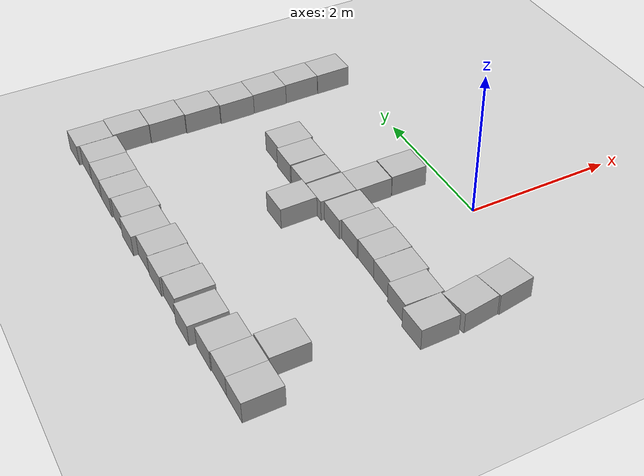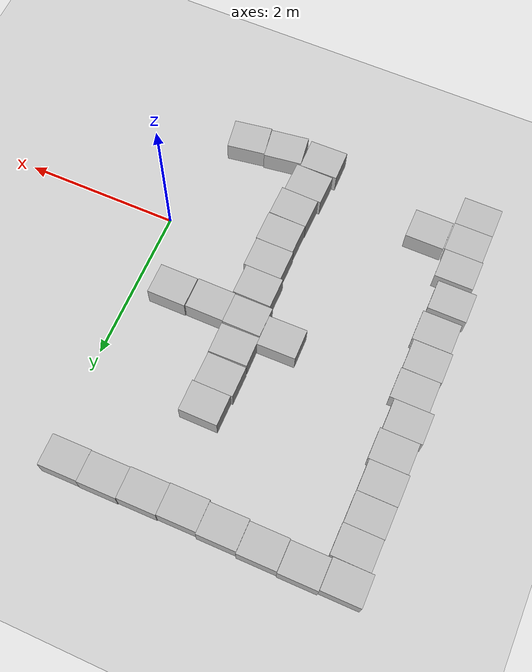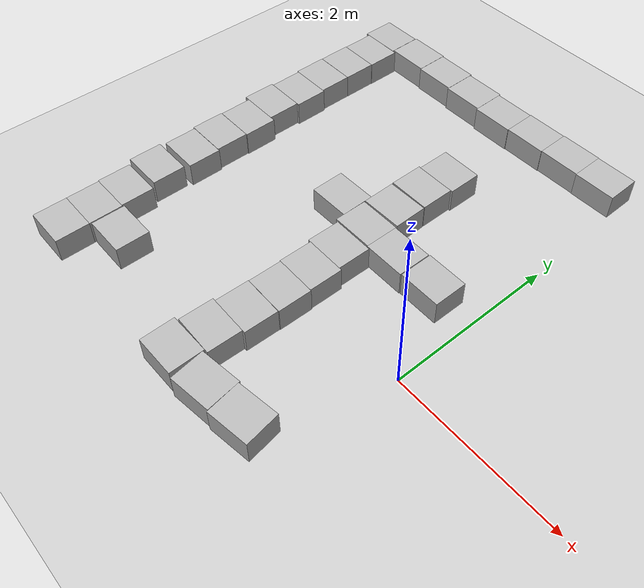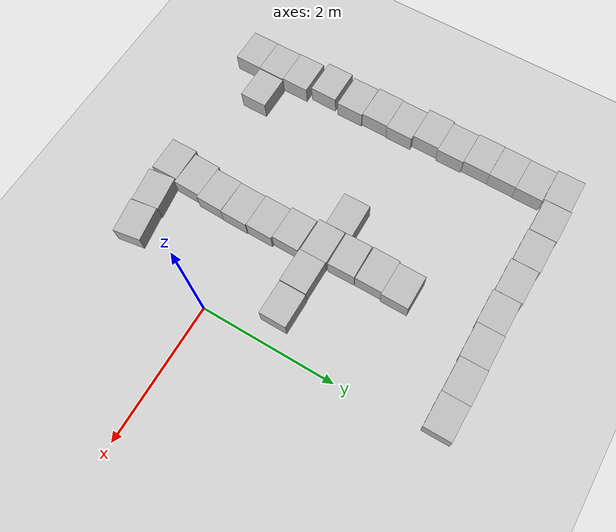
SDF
<sdf version="1.7">
 <world name="default">
  <model name="ground_plane">
   <static>1</static>
   <link name="link">
    <collision name="collision">
     <geometry><plane><normal>0 0 1</normal><size>100 100</size></plane></geometry>
     <surface><friction><ode><mu>100</mu><mu2>50</mu2></ode></friction></surface>
    </collision>
    <visual name="visual">
     <cast_shadows>0</cast_shadows>
     <geometry><plane><normal>0 0 1</normal><size>100 100</size></plane></geometry>
     <material>
      <script><uri>file://media/materials/scripts/gazebo.material</uri><name>Gazebo/Grey</name></script>
     </material>
    </visual>
   </link>
  </model>
  <model name="cardboard_box">
   <pose>-0.504733 0.934139 0.149 0 -0 0</pose>
   <link name="link">
    <inertial>
     <mass>2</mass>
     <inertia>
      <ixx>0.0416667</ixx>
      <ixy>0</ixy>
      <ixz>0</ixz>
      <iyy>0.0566667</iyy>
      <iyz>0</iyz>
      <izz>0.0683333</izz>
     </inertia>
    </inertial>
    <collision name="collision">
     <geometry><box><size>0.5 0.4 0.3</size></box></geometry>
     <surface>
      <friction><ode><mu>1</mu><mu2>1</mu2></ode></friction>
      <contact><ode><kp>1e+07</kp><kd>1</kd><min_depth>0.001</min_depth><max_vel>0.1</max_vel></ode></contact>
     </surface>
    </collision>
    <visual name="visual">
     <pose>0 0 -0.15 0 -0 0</pose>
     <geometry>
      <mesh><uri>model://cardboard_box/meshes/cardboard_box.dae</uri><scale>1.25932 1.00745 0.755591</scale></mesh>
     </geometry>
    </visual>
   </link>
  </model>
  <model name="cardboard_box_clone_1">
   <pose>-1.0138 0.925384 0.149 0 -0 0.00015</pose>
   <link name="link">
    <inertial>
     <mass>2</mass>
     <inertia>
      <ixx>0.0416667</ixx>
      <ixy>0</ixy>
      <ixz>0</ixz>
      <iyy>0.0566667</iyy>
      <iyz>0</iyz>
      <izz>0.0683333</izz>
     </inertia>
    </inertial>
    <collision name="collision">
     <geometry><box><size>0.5 0.4 0.3</size></box></geometry>
     <surface>
      <friction><ode><mu>1</mu><mu2>1</mu2></ode></friction>
      <contact><ode><kp>1e+07</kp><kd>1</kd><min_depth>0.001</min_depth><max_vel>0.1</max_vel></ode></contact>
     </surface>
    </collision>
    <visual name="visual">
     <pose>0 0 -0.15 0 -0 0</pose>
     <geometry>
      <mesh><uri>model://cardboard_box/meshes/cardboard_box.dae</uri><scale>1.25932 1.00745 0.755591</scale></mesh>
     </geometry>
    </visual>
   </link>
  </model>
  <model name="cardboard_box_clone_2">
   <pose>-1.51293 0.932592 0.149 0 -0 0.000262</pose>
   <link name="link">
    <inertial>
     <mass>2</mass>
     <inertia>
      <ixx>0.0416667</ixx>
      <ixy>0</ixy>
      <ixz>0</ixz>
      <iyy>0.0566667</iyy>
      <iyz>0</iyz>
      <izz>0.0683333</izz>
     </inertia>
    </inertial>
    <collision name="collision">
     <geometry><box><size>0.5 0.4 0.3</size></box></geometry>
     <surface>
      <friction><ode><mu>1</mu><mu2>1</mu2></ode></friction>
      <contact><ode><kp>1e+07</kp><kd>1</kd><min_depth>0.001</min_depth><max_vel>0.1</max_vel></ode></contact>
     </surface>
    </collision>
    <visual name="visual">
     <pose>0 0 -0.15 0 -0 0</pose>
     <geometry>
      <mesh><uri>model://cardboard_box/meshes/cardboard_box.dae</uri><scale>1.25932 1.00745 0.755591</scale></mesh>
     </geometry>
    </visual>
   </link>
  </model>
  <model name="cardboard_box_clone_3">
   <pose>-1.47374 0.517825 0.149 0 0 -0.007011</pose>
   <link name="link">
    <inertial>
     <mass>2</mass>
     <inertia>
      <ixx>0.0416667</ixx>
      <ixy>0</ixy>
      <ixz>0</ixz>
      <iyy>0.0566667</iyy>
      <iyz>0</iyz>
      <izz>0.0683333</izz>
     </inertia>
    </inertial>
    <collision name="collision">
     <geometry><box><size>0.5 0.4 0.3</size></box></geometry>
     <surface>
      <friction><ode><mu>1</mu><mu2>1</mu2></ode></friction>
      <contact><ode><kp>1e+07</kp><kd>1</kd><min_depth>0.001</min_depth><max_vel>0.1</max_vel></ode></contact>
     </surface>
    </collision>
    <visual name="visual">
     <pose>0 0 -0.15 0 -0 0</pose>
     <geometry>
      <mesh><uri>model://cardboard_box/meshes/cardboard_box.dae</uri><scale>1.25932 1.00745 0.755591</scale></mesh>
     </geometry>
    </visual>
   </link>
  </model>
  <model name="cardboard_box_clone_4">
   <pose>-1.44358 0.118344 0.149 0 0 -0.006992</pose>
   <link name="link">
    <inertial>
     <mass>2</mass>
     <inertia>
      <ixx>0.0416667</ixx>
      <ixy>0</ixy>
      <ixz>0</ixz>
      <iyy>0.0566667</iyy>
      <iyz>0</iyz>
      <izz>0.0683333</izz>
     </inertia>
    </inertial>
    <collision name="collision">
     <geometry><box><size>0.5 0.4 0.3</size></box></geometry>
     <surface>
      <friction><ode><mu>1</mu><mu2>1</mu2></ode></friction>
      <contact><ode><kp>1e+07</kp><kd>1</kd><min_depth>0.001</min_depth><max_vel>0.1</max_vel></ode></contact>
     </surface>
    </collision>
    <visual name="visual">
     <pose>0 0 -0.15 0 -0 0</pose>
     <geometry>
      <mesh><uri>model://cardboard_box/meshes/cardboard_box.dae</uri><scale>1.25932 1.00745 0.755591</scale></mesh>
     </geometry>
    </visual>
   </link>
  </model>
  <model name="cardboard_box_clone_5">
   <pose>-1.43679 -0.281524 0.149 -0 -0 -0.009797</pose>
   <link name="link">
    <inertial>
     <mass>2</mass>
     <inertia>
      <ixx>0.0416667</ixx>
      <ixy>0</ixy>
      <ixz>0</ixz>
      <iyy>0.0566667</iyy>
      <iyz>0</iyz>
      <izz>0.0683333</izz>
     </inertia>
    </inertial>
    <collision name="collision">
     <geometry><box><size>0.5 0.4 0.3</size></box></geometry>
     <surface>
      <friction><ode><mu>1</mu><mu2>1</mu2></ode></friction>
      <contact><ode><kp>1e+07</kp><kd>1</kd><min_depth>0.001</min_depth><max_vel>0.1</max_vel></ode></contact>
     </surface>
    </collision>
    <visual name="visual">
     <pose>0 0 -0.15 0 -0 0</pose>
     <geometry>
      <mesh><uri>model://cardboard_box/meshes/cardboard_box.dae</uri><scale>1.25932 1.00745 0.755591</scale></mesh>
     </geometry>
    </visual>
   </link>
  </model>
  <model name="cardboard_box_clone_6">
   <pose>-1.44817 -0.682981 0.149 0 -0 -0.019821</pose>
   <link name="link">
    <inertial>
     <mass>2</mass>
     <inertia>
      <ixx>0.0416667</ixx>
      <ixy>0</ixy>
      <ixz>0</ixz>
      <iyy>0.0566667</iyy>
      <iyz>0</iyz>
      <izz>0.0683333</izz>
     </inertia>
    </inertial>
    <collision name="collision">
     <geometry><box><size>0.5 0.4 0.3</size></box></geometry>
     <surface>
      <friction><ode><mu>1</mu><mu2>1</mu2></ode></friction>
      <contact><ode><kp>1e+07</kp><kd>1</kd><min_depth>0.001</min_depth><max_vel>0.1</max_vel></ode></contact>
     </surface>
    </collision>
    <visual name="visual">
     <pose>0 0 -0.15 0 -0 0</pose>
     <geometry>
      <mesh><uri>model://cardboard_box/meshes/cardboard_box.dae</uri><scale>1.25932 1.00745 0.755591</scale></mesh>
     </geometry>
    </visual>
   </link>
  </model>
  <model name="cardboard_box_clone_7">
   <pose>-1.48877 -1.08128 0.149 -0 -0 -0.019893</pose>
   <link name="link">
    <inertial>
     <mass>2</mass>
     <inertia>
      <ixx>0.0416667</ixx>
      <ixy>0</ixy>
      <ixz>0</ixz>
      <iyy>0.0566667</iyy>
      <iyz>0</iyz>
      <izz>0.0683333</izz>
     </inertia>
    </inertial>
    <collision name="collision">
     <geometry><box><size>0.5 0.4 0.3</size></box></geometry>
     <surface>
      <friction><ode><mu>1</mu><mu2>1</mu2></ode></friction>
      <contact><ode><kp>1e+07</kp><kd>1</kd><min_depth>0.001</min_depth><max_vel>0.1</max_vel></ode></contact>
     </surface>
    </collision>
    <visual name="visual">
     <pose>0 0 -0.15 0 -0 0</pose>
     <geometry>
      <mesh><uri>model://cardboard_box/meshes/cardboard_box.dae</uri><scale>1.25932 1.00745 0.755591</scale></mesh>
     </geometry>
    </visual>
   </link>
  </model>
  <model name="cardboard_box_clone_8">
   <pose>-1.53394 -1.48869 0.149 0 -0 0.012453</pose>
   <link name="link">
    <inertial>
     <mass>2</mass>
     <inertia>
      <ixx>0.0416667</ixx>
      <ixy>0</ixy>
      <ixz>0</ixz>
      <iyy>0.0566667</iyy>
      <iyz>0</iyz>
      <izz>0.0683333</izz>
     </inertia>
    </inertial>
    <collision name="collision">
     <geometry><box><size>0.5 0.4 0.3</size></box></geometry>
     <surface>
      <friction><ode><mu>1</mu><mu2>1</mu2></ode></friction>
      <contact><ode><kp>1e+07</kp><kd>1</kd><min_depth>0.001</min_depth><max_vel>0.1</max_vel></ode></contact>
     </surface>
    </collision>
    <visual name="visual">
     <pose>0 0 -0.15 0 -0 0</pose>
     <geometry>
      <mesh><uri>model://cardboard_box/meshes/cardboard_box.dae</uri><scale>1.25932 1.00745 0.755591</scale></mesh>
     </geometry>
    </visual>
   </link>
  </model>
  <model name="cardboard_box_clone_9">
   <pose>-1.01175 -1.47132 0.149 0 -0 0.13741</pose>
   <link name="link">
    <inertial>
     <mass>2</mass>
     <inertia>
      <ixx>0.0416667</ixx>
      <ixy>0</ixy>
      <ixz>0</ixz>
      <iyy>0.0566667</iyy>
      <iyz>0</iyz>
      <izz>0.0683333</izz>
     </inertia>
    </inertial>
    <collision name="collision">
     <geometry><box><size>0.5 0.4 0.3</size></box></geometry>
     <surface>
      <friction><ode><mu>1</mu><mu2>1</mu2></ode></friction>
      <contact><ode><kp>1e+07</kp><kd>1</kd><min_depth>0.001</min_depth><max_vel>0.1</max_vel></ode></contact>
     </surface>
    </collision>
    <visual name="visual">
     <pose>0 0 -0.15 0 -0 0</pose>
     <geometry>
      <mesh><uri>model://cardboard_box/meshes/cardboard_box.dae</uri><scale>1.25932 1.00745 0.755591</scale></mesh>
     </geometry>
    </visual>
   </link>
  </model>
  <model name="cardboard_box_clone_10">
   <pose>-0.512427 -1.41527 0.149 0 -0 0.152729</pose>
   <link name="link">
    <inertial>
     <mass>2</mass>
     <inertia>
      <ixx>0.0416667</ixx>
      <ixy>0</ixy>
      <ixz>0</ixz>
      <iyy>0.0566667</iyy>
      <iyz>0</iyz>
      <izz>0.0683333</izz>
     </inertia>
    </inertial>
    <collision name="collision">
     <geometry><box><size>0.5 0.4 0.3</size></box></geometry>
     <surface>
      <friction><ode><mu>1</mu><mu2>1</mu2></ode></friction>
      <contact><ode><kp>1e+07</kp><kd>1</kd><min_depth>0.001</min_depth><max_vel>0.1</max_vel></ode></contact>
     </surface>
    </collision>
    <visual name="visual">
     <pose>0 0 -0.15 0 -0 0</pose>
     <geometry>
      <mesh><uri>model://cardboard_box/meshes/cardboard_box.dae</uri><scale>1.25932 1.00745 0.755591</scale></mesh>
     </geometry>
    </visual>
   </link>
  </model>
  <model name="cardboard_box_clone_1_clone_7">
   <pose>-0.302554 3.41068 0.149 0 -0 0.008841</pose>
   <link name="link">
    <inertial>
     <mass>2</mass>
     <inertia>
      <ixx>0.0416667</ixx>
      <ixy>0</ixy>
      <ixz>0</ixz>
      <iyy>0.0566667</iyy>
      <iyz>0</iyz>
      <izz>0.0683333</izz>
     </inertia>
    </inertial>
    <collision name="collision">
     <geometry><box><size>0.5 0.4 0.3</size></box></geometry>
     <surface>
      <friction><ode><mu>1</mu><mu2>1</mu2></ode></friction>
      <contact><ode><kp>1e+07</kp><kd>1</kd><min_depth>0.001</min_depth><max_vel>0.1</max_vel></ode></contact>
     </surface>
    </collision>
    <visual name="visual">
     <pose>0 0 -0.15 0 -0 0</pose>
     <geometry>
      <mesh><uri>model://cardboard_box/meshes/cardboard_box.dae</uri><scale>1.25932 1.00745 0.755591</scale></mesh>
     </geometry>
    </visual>
   </link>
  </model>
  <model name="cardboard_box_clone_1_clone_8">
   <pose>-0.802662 3.41159 0.149 0 -0 0.008652</pose>
   <link name="link">
    <inertial>
     <mass>2</mass>
     <inertia>
      <ixx>0.0416667</ixx>
      <ixy>0</ixy>
      <ixz>0</ixz>
      <iyy>0.0566667</iyy>
      <iyz>0</iyz>
      <izz>0.0683333</izz>
     </inertia>
    </inertial>
    <collision name="collision">
     <geometry><box><size>0.5 0.4 0.3</size></box></geometry>
     <surface>
      <friction><ode><mu>1</mu><mu2>1</mu2></ode></friction>
      <contact><ode><kp>1e+07</kp><kd>1</kd><min_depth>0.001</min_depth><max_vel>0.1</max_vel></ode></contact>
     </surface>
    </collision>
    <visual name="visual">
     <pose>0 0 -0.15 0 -0 0</pose>
     <geometry>
      <mesh><uri>model://cardboard_box/meshes/cardboard_box.dae</uri><scale>1.25932 1.00745 0.755591</scale></mesh>
     </geometry>
    </visual>
   </link>
  </model>
  <model name="cardboard_box_clone_1_clone_9">
   <pose>-1.30204 3.40025 0.149 0 -0 0.007997</pose>
   <link name="link">
    <inertial>
     <mass>2</mass>
     <inertia>
      <ixx>0.0416667</ixx>
      <ixy>0</ixy>
      <ixz>0</ixz>
      <iyy>0.0566667</iyy>
      <iyz>0</iyz>
      <izz>0.0683333</izz>
     </inertia>
    </inertial>
    <collision name="collision">
     <geometry><box><size>0.5 0.4 0.3</size></box></geometry>
     <surface>
      <friction><ode><mu>1</mu><mu2>1</mu2></ode></friction>
      <contact><ode><kp>1e+07</kp><kd>1</kd><min_depth>0.001</min_depth><max_vel>0.1</max_vel></ode></contact>
     </surface>
    </collision>
    <visual name="visual">
     <pose>0 0 -0.15 0 -0 0</pose>
     <geometry>
      <mesh><uri>model://cardboard_box/meshes/cardboard_box.dae</uri><scale>1.25932 1.00745 0.755591</scale></mesh>
     </geometry>
    </visual>
   </link>
  </model>
  <model name="cardboard_box_clone_1_clone_10">
   <pose>-1.80159 3.38885 0.149 0 -0 0.006336</pose>
   <link name="link">
    <inertial>
     <mass>2</mass>
     <inertia>
      <ixx>0.0416667</ixx>
      <ixy>0</ixy>
      <ixz>0</ixz>
      <iyy>0.0566667</iyy>
      <iyz>0</iyz>
      <izz>0.0683333</izz>
     </inertia>
    </inertial>
    <collision name="collision">
     <geometry><box><size>0.5 0.4 0.3</size></box></geometry>
     <surface>
      <friction><ode><mu>1</mu><mu2>1</mu2></ode></friction>
      <contact><ode><kp>1e+07</kp><kd>1</kd><min_depth>0.001</min_depth><max_vel>0.1</max_vel></ode></contact>
     </surface>
    </collision>
    <visual name="visual">
     <pose>0 0 -0.15 0 -0 0</pose>
     <geometry>
      <mesh><uri>model://cardboard_box/meshes/cardboard_box.dae</uri><scale>1.25932 1.00745 0.755591</scale></mesh>
     </geometry>
    </visual>
   </link>
  </model>
  <model name="cardboard_box_clone_1_clone_11">
   <pose>-2.30217 3.40567 0.149 0 -0 0.004693</pose>
   <link name="link">
    <inertial>
     <mass>2</mass>
     <inertia>
      <ixx>0.0416667</ixx>
      <ixy>0</ixy>
      <ixz>0</ixz>
      <iyy>0.0566667</iyy>
      <iyz>0</iyz>
      <izz>0.0683333</izz>
     </inertia>
    </inertial>
    <collision name="collision">
     <geometry><box><size>0.5 0.4 0.3</size></box></geometry>
     <surface>
      <friction><ode><mu>1</mu><mu2>1</mu2></ode></friction>
      <contact><ode><kp>1e+07</kp><kd>1</kd><min_depth>0.001</min_depth><max_vel>0.1</max_vel></ode></contact>
     </surface>
    </collision>
    <visual name="visual">
     <pose>0 0 -0.15 0 -0 0</pose>
     <geometry>
      <mesh><uri>model://cardboard_box/meshes/cardboard_box.dae</uri><scale>1.25932 1.00745 0.755591</scale></mesh>
     </geometry>
    </visual>
   </link>
  </model>
  <model name="cardboard_box_clone_1_clone_12">
   <pose>-2.80351 3.42254 0.149 0 -0 0.003569</pose>
   <link name="link">
    <inertial>
     <mass>2</mass>
     <inertia>
      <ixx>0.0416667</ixx>
      <ixy>0</ixy>
      <ixz>0</ixz>
      <iyy>0.0566667</iyy>
      <iyz>0</iyz>
      <izz>0.0683333</izz>
     </inertia>
    </inertial>
    <collision name="collision">
     <geometry><box><size>0.5 0.4 0.3</size></box></geometry>
     <surface>
      <friction><ode><mu>1</mu><mu2>1</mu2></ode></friction>
      <contact><ode><kp>1e+07</kp><kd>1</kd><min_depth>0.001</min_depth><max_vel>0.1</max_vel></ode></contact>
     </surface>
    </collision>
    <visual name="visual">
     <pose>0 0 -0.15 0 -0 0</pose>
     <geometry>
      <mesh><uri>model://cardboard_box/meshes/cardboard_box.dae</uri><scale>1.25932 1.00745 0.755591</scale></mesh>
     </geometry>
    </visual>
   </link>
  </model>
  <model name="cardboard_box_clone_1_clone_13">
   <pose>-3.30564 3.43264 0.149 0 -0 0.003214</pose>
   <link name="link">
    <inertial>
     <mass>2</mass>
     <inertia>
      <ixx>0.0416667</ixx>
      <ixy>0</ixy>
      <ixz>0</ixz>
      <iyy>0.0566667</iyy>
      <iyz>0</iyz>
      <izz>0.0683333</izz>
     </inertia>
    </inertial>
    <collision name="collision">
     <geometry><box><size>0.5 0.4 0.3</size></box></geometry>
     <surface>
      <friction><ode><mu>1</mu><mu2>1</mu2></ode></friction>
      <contact><ode><kp>1e+07</kp><kd>1</kd><min_depth>0.001</min_depth><max_vel>0.1</max_vel></ode></contact>
     </surface>
    </collision>
    <visual name="visual">
     <pose>0 0 -0.15 0 -0 0</pose>
     <geometry>
      <mesh><uri>model://cardboard_box/meshes/cardboard_box.dae</uri><scale>1.25932 1.00745 0.755591</scale></mesh>
     </geometry>
    </visual>
   </link>
  </model>
  <model name="cardboard_box_clone_1_clone_14">
   <pose>-3.80755 3.41498 0.149 0 -0 0.003171</pose>
   <link name="link">
    <inertial>
     <mass>2</mass>
     <inertia>
      <ixx>0.0416667</ixx>
      <ixy>0</ixy>
      <ixz>0</ixz>
      <iyy>0.0566667</iyy>
      <iyz>0</iyz>
      <izz>0.0683333</izz>
     </inertia>
    </inertial>
    <collision name="collision">
     <geometry><box><size>0.5 0.4 0.3</size></box></geometry>
     <surface>
      <friction><ode><mu>1</mu><mu2>1</mu2></ode></friction>
      <contact><ode><kp>1e+07</kp><kd>1</kd><min_depth>0.001</min_depth><max_vel>0.1</max_vel></ode></contact>
     </surface>
    </collision>
    <visual name="visual">
     <pose>0 0 -0.15 0 -0 0</pose>
     <geometry>
      <mesh><uri>model://cardboard_box/meshes/cardboard_box.dae</uri><scale>1.25932 1.00745 0.755591</scale></mesh>
     </geometry>
    </visual>
   </link>
  </model>
  <model name="cardboard_box_clone_1_clone_15">
   <pose>-3.76503 3.01358 0.149 0 0 -0.003201</pose>
   <link name="link">
    <inertial>
     <mass>2</mass>
     <inertia>
      <ixx>0.0416667</ixx>
      <ixy>0</ixy>
      <ixz>0</ixz>
      <iyy>0.0566667</iyy>
      <iyz>0</iyz>
      <izz>0.0683333</izz>
     </inertia>
    </inertial>
    <collision name="collision">
     <geometry><box><size>0.5 0.4 0.3</size></box></geometry>
     <surface>
      <friction><ode><mu>1</mu><mu2>1</mu2></ode></friction>
      <contact><ode><kp>1e+07</kp><kd>1</kd><min_depth>0.001</min_depth><max_vel>0.1</max_vel></ode></contact>
     </surface>
    </collision>
    <visual name="visual">
     <pose>0 0 -0.15 0 -0 0</pose>
     <geometry>
      <mesh><uri>model://cardboard_box/meshes/cardboard_box.dae</uri><scale>1.25932 1.00745 0.755591</scale></mesh>
     </geometry>
    </visual>
   </link>
  </model>
  <model name="cardboard_box_clone_1_clone_16">
   <pose>-3.77094 2.61358 0.149 0 -0 -0.003218</pose>
   <link name="link">
    <inertial>
     <mass>2</mass>
     <inertia>
      <ixx>0.0416667</ixx>
      <ixy>0</ixy>
      <ixz>0</ixz>
      <iyy>0.0566667</iyy>
      <iyz>0</iyz>
      <izz>0.0683333</izz>
     </inertia>
    </inertial>
    <collision name="collision">
     <geometry><box><size>0.5 0.4 0.3</size></box></geometry>
     <surface>
      <friction><ode><mu>1</mu><mu2>1</mu2></ode></friction>
      <contact><ode><kp>1e+07</kp><kd>1</kd><min_depth>0.001</min_depth><max_vel>0.1</max_vel></ode></contact>
     </surface>
    </collision>
    <visual name="visual">
     <pose>0 0 -0.15 0 -0 0</pose>
     <geometry>
      <mesh><uri>model://cardboard_box/meshes/cardboard_box.dae</uri><scale>1.25932 1.00745 0.755591</scale></mesh>
     </geometry>
    </visual>
   </link>
  </model>
  <model name="cardboard_box_clone_1_clone_17">
   <pose>-3.77436 2.2132 0.149 0 0 -0.001778</pose>
   <link name="link">
    <inertial>
     <mass>2</mass>
     <inertia>
      <ixx>0.0416667</ixx>
      <ixy>0</ixy>
      <ixz>0</ixz>
      <iyy>0.0566667</iyy>
      <iyz>0</iyz>
      <izz>0.0683333</izz>
     </inertia>
    </inertial>
    <collision name="collision">
     <geometry><box><size>0.5 0.4 0.3</size></box></geometry>
     <surface>
      <friction><ode><mu>1</mu><mu2>1</mu2></ode></friction>
      <contact><ode><kp>1e+07</kp><kd>1</kd><min_depth>0.001</min_depth><max_vel>0.1</max_vel></ode></contact>
     </surface>
    </collision>
    <visual name="visual">
     <pose>0 0 -0.15 0 -0 0</pose>
     <geometry>
      <mesh><uri>model://cardboard_box/meshes/cardboard_box.dae</uri><scale>1.25932 1.00745 0.755591</scale></mesh>
     </geometry>
    </visual>
   </link>
  </model>
  <model name="cardboard_box_clone_1_clone_18">
   <pose>-3.75443 1.81315 0.149 0 0 -0.001118</pose>
   <link name="link">
    <inertial>
     <mass>2</mass>
     <inertia>
      <ixx>0.0416667</ixx>
      <ixy>0</ixy>
      <ixz>0</ixz>
      <iyy>0.0566667</iyy>
      <iyz>0</iyz>
      <izz>0.0683333</izz>
     </inertia>
    </inertial>
    <collision name="collision">
     <geometry><box><size>0.5 0.4 0.3</size></box></geometry>
     <surface>
      <friction><ode><mu>1</mu><mu2>1</mu2></ode></friction>
      <contact><ode><kp>1e+07</kp><kd>1</kd><min_depth>0.001</min_depth><max_vel>0.1</max_vel></ode></contact>
     </surface>
    </collision>
    <visual name="visual">
     <pose>0 0 -0.15 0 -0 0</pose>
     <geometry>
      <mesh><uri>model://cardboard_box/meshes/cardboard_box.dae</uri><scale>1.25932 1.00745 0.755591</scale></mesh>
     </geometry>
    </visual>
   </link>
  </model>
  <model name="cardboard_box_clone_1_clone_19">
   <pose>-3.78094 1.41387 0.149 -0 -0 -0.000279</pose>
   <link name="link">
    <inertial>
     <mass>2</mass>
     <inertia>
      <ixx>0.0416667</ixx>
      <ixy>0</ixy>
      <ixz>0</ixz>
      <iyy>0.0566667</iyy>
      <iyz>0</iyz>
      <izz>0.0683333</izz>
     </inertia>
    </inertial>
    <collision name="collision">
     <geometry><box><size>0.5 0.4 0.3</size></box></geometry>
     <surface>
      <friction><ode><mu>1</mu><mu2>1</mu2></ode></friction>
      <contact><ode><kp>1e+07</kp><kd>1</kd><min_depth>0.001</min_depth><max_vel>0.1</max_vel></ode></contact>
     </surface>
    </collision>
    <visual name="visual">
     <pose>0 0 -0.15 0 -0 0</pose>
     <geometry>
      <mesh><uri>model://cardboard_box/meshes/cardboard_box.dae</uri><scale>1.25932 1.00745 0.755591</scale></mesh>
     </geometry>
    </visual>
   </link>
  </model>
  <model name="cardboard_box_clone_1_clone_20">
   <pose>-3.7204 1.014 0.149 0 -0 0.000476</pose>
   <link name="link">
    <inertial>
     <mass>2</mass>
     <inertia>
      <ixx>0.0416667</ixx>
      <ixy>0</ixy>
      <ixz>0</ixz>
      <iyy>0.0566667</iyy>
      <iyz>0</iyz>
      <izz>0.0683333</izz>
     </inertia>
    </inertial>
    <collision name="collision">
     <geometry><box><size>0.5 0.4 0.3</size></box></geometry>
     <surface>
      <friction><ode><mu>1</mu><mu2>1</mu2></ode></friction>
      <contact><ode><kp>1e+07</kp><kd>1</kd><min_depth>0.001</min_depth><max_vel>0.1</max_vel></ode></contact>
     </surface>
    </collision>
    <visual name="visual">
     <pose>0 0 -0.15 0 -0 0</pose>
     <geometry>
      <mesh><uri>model://cardboard_box/meshes/cardboard_box.dae</uri><scale>1.25932 1.00745 0.755591</scale></mesh>
     </geometry>
    </visual>
   </link>
  </model>
  <model name="cardboard_box_clone_1_clone_21">
   <pose>-3.73067 0.61347 0.149 0 -0 0.000612</pose>
   <link name="link">
    <inertial>
     <mass>2</mass>
     <inertia>
      <ixx>0.0416667</ixx>
      <ixy>0</ixy>
      <ixz>0</ixz>
      <iyy>0.0566667</iyy>
      <iyz>0</iyz>
      <izz>0.0683333</izz>
     </inertia>
    </inertial>
    <collision name="collision">
     <geometry><box><size>0.5 0.4 0.3</size></box></geometry>
     <surface>
      <friction><ode><mu>1</mu><mu2>1</mu2></ode></friction>
      <contact><ode><kp>1e+07</kp><kd>1</kd><min_depth>0.001</min_depth><max_vel>0.1</max_vel></ode></contact>
     </surface>
    </collision>
    <visual name="visual">
     <pose>0 0 -0.15 0 -0 0</pose>
     <geometry>
      <mesh><uri>model://cardboard_box/meshes/cardboard_box.dae</uri><scale>1.25932 1.00745 0.755591</scale></mesh>
     </geometry>
    </visual>
   </link>
  </model>
  <model name="cardboard_box_clone_1_clone_22">
   <pose>-3.70655 0.212247 0.149 0 -0 0.000734</pose>
   <link name="link">
    <inertial>
     <mass>2</mass>
     <inertia>
      <ixx>0.0416667</ixx>
      <ixy>0</ixy>
      <ixz>0</ixz>
      <iyy>0.0566667</iyy>
      <iyz>0</iyz>
      <izz>0.0683333</izz>
     </inertia>
    </inertial>
    <collision name="collision">
     <geometry><box><size>0.5 0.4 0.3</size></box></geometry>
     <surface>
      <friction><ode><mu>1</mu><mu2>1</mu2></ode></friction>
      <contact><ode><kp>1e+07</kp><kd>1</kd><min_depth>0.001</min_depth><max_vel>0.1</max_vel></ode></contact>
     </surface>
    </collision>
    <visual name="visual">
     <pose>0 0 -0.15 0 -0 0</pose>
     <geometry>
      <mesh><uri>model://cardboard_box/meshes/cardboard_box.dae</uri><scale>1.25932 1.00745 0.755591</scale></mesh>
     </geometry>
    </visual>
   </link>
  </model>
  <model name="cardboard_box_clone_1_clone_23">
   <pose>-3.73888 -0.24548 0.149 0 0 -0.000102</pose>
   <link name="link">
    <inertial>
     <mass>2</mass>
     <inertia>
      <ixx>0.0416667</ixx>
      <ixy>0</ixy>
      <ixz>0</ixz>
      <iyy>0.0566667</iyy>
      <iyz>0</iyz>
      <izz>0.0683333</izz>
     </inertia>
    </inertial>
    <collision name="collision">
     <geometry><box><size>0.5 0.4 0.3</size></box></geometry>
     <surface>
      <friction><ode><mu>1</mu><mu2>1</mu2></ode></friction>
      <contact><ode><kp>1e+07</kp><kd>1</kd><min_depth>0.001</min_depth><max_vel>0.1</max_vel></ode></contact>
     </surface>
    </collision>
    <visual name="visual">
     <pose>0 0 -0.15 0 -0 0</pose>
     <geometry>
      <mesh><uri>model://cardboard_box/meshes/cardboard_box.dae</uri><scale>1.25932 1.00745 0.755591</scale></mesh>
     </geometry>
    </visual>
   </link>
  </model>
  <model name="cardboard_box_clone_1_clone_24">
   <pose>-3.66987 -0.694201 0.149 0 -0 0.000686</pose>
   <link name="link">
    <inertial>
     <mass>2</mass>
     <inertia>
      <ixx>0.0416667</ixx>
      <ixy>0</ixy>
      <ixz>0</ixz>
      <iyy>0.0566667</iyy>
      <iyz>0</iyz>
      <izz>0.0683333</izz>
     </inertia>
    </inertial>
    <collision name="collision">
     <geometry><box><size>0.5 0.4 0.3</size></box></geometry>
     <surface>
      <friction><ode><mu>1</mu><mu2>1</mu2></ode></friction>
      <contact><ode><kp>1e+07</kp><kd>1</kd><min_depth>0.001</min_depth><max_vel>0.1</max_vel></ode></contact>
     </surface>
    </collision>
    <visual name="visual">
     <pose>0 0 -0.15 0 -0 0</pose>
     <geometry>
      <mesh><uri>model://cardboard_box/meshes/cardboard_box.dae</uri><scale>1.25932 1.00745 0.755591</scale></mesh>
     </geometry>
    </visual>
   </link>
  </model>
  <model name="cardboard_box_clone_1_clone_25">
   <pose>-3.6586 -1.09331 0.149 0 -0 0.000653</pose>
   <link name="link">
    <inertial>
     <mass>2</mass>
     <inertia>
      <ixx>0.0416667</ixx>
      <ixy>0</ixy>
      <ixz>0</ixz>
      <iyy>0.0566667</iyy>
      <iyz>0</iyz>
      <izz>0.0683333</izz>
     </inertia>
    </inertial>
    <collision name="collision">
     <geometry><box><size>0.5 0.4 0.3</size></box></geometry>
     <surface>
      <friction><ode><mu>1</mu><mu2>1</mu2></ode></friction>
      <contact><ode><kp>1e+07</kp><kd>1</kd><min_depth>0.001</min_depth><max_vel>0.1</max_vel></ode></contact>
     </surface>
    </collision>
    <visual name="visual">
     <pose>0 0 -0.15 0 -0 0</pose>
     <geometry>
      <mesh><uri>model://cardboard_box/meshes/cardboard_box.dae</uri><scale>1.25932 1.00745 0.755591</scale></mesh>
     </geometry>
    </visual>
   </link>
  </model>
  <model name="cardboard_box_clone_1_clone_26">
   <pose>-3.65901 -1.49246 0.149 0 -0 0.000603</pose>
   <link name="link">
    <inertial>
     <mass>2</mass>
     <inertia>
      <ixx>0.0416667</ixx>
      <ixy>0</ixy>
      <ixz>0</ixz>
      <iyy>0.0566667</iyy>
      <iyz>0</iyz>
      <izz>0.0683333</izz>
     </inertia>
    </inertial>
    <collision name="collision">
     <geometry><box><size>0.5 0.4 0.3</size></box></geometry>
     <surface>
      <friction><ode><mu>1</mu><mu2>1</mu2></ode></friction>
      <contact><ode><kp>1e+07</kp><kd>1</kd><min_depth>0.001</min_depth><max_vel>0.1</max_vel></ode></contact>
     </surface>
    </collision>
    <visual name="visual">
     <pose>0 0 -0.15 0 -0 0</pose>
     <geometry>
      <mesh><uri>model://cardboard_box/meshes/cardboard_box.dae</uri><scale>1.25932 1.00745 0.755591</scale></mesh>
     </geometry>
    </visual>
   </link>
  </model>
  <model name="cardboard_box_clone_1_clone_72">
   <pose>-1.52022 1.3496 0.149 0 -0 0.015205</pose>
   <link name="link">
    <inertial>
     <mass>2</mass>
     <inertia>
      <ixx>0.0416667</ixx>
      <ixy>0</ixy>
      <ixz>0</ixz>
      <iyy>0.0566667</iyy>
      <iyz>0</iyz>
      <izz>0.0683333</izz>
     </inertia>
    </inertial>
    <collision name="collision">
     <geometry><box><size>0.5 0.4 0.3</size></box></geometry>
     <surface>
      <friction><ode><mu>1</mu><mu2>1</mu2></ode></friction>
      <contact><ode><kp>1e+07</kp><kd>1</kd><min_depth>0.001</min_depth><max_vel>0.1</max_vel></ode></contact>
     </surface>
    </collision>
    <visual name="visual">
     <pose>0 0 -0.15 0 -0 0</pose>
     <geometry>
      <mesh><uri>model://cardboard_box/meshes/cardboard_box.dae</uri><scale>1.25932 1.00745 0.755591</scale></mesh>
     </geometry>
    </visual>
   </link>
  </model>
  <model name="cardboard_box_clone_1_clone_73">
   <pose>-1.52629 1.76423 0.149 -0 -0 -0.000977</pose>
   <link name="link">
    <inertial>
     <mass>2</mass>
     <inertia>
      <ixx>0.0416667</ixx>
      <ixy>0</ixy>
      <ixz>0</ixz>
      <iyy>0.0566667</iyy>
      <iyz>0</iyz>
      <izz>0.0683333</izz>
     </inertia>
    </inertial>
    <collision name="collision">
     <geometry><box><size>0.5 0.4 0.3</size></box></geometry>
     <surface>
      <friction><ode><mu>1</mu><mu2>1</mu2></ode></friction>
      <contact><ode><kp>1e+07</kp><kd>1</kd><min_depth>0.001</min_depth><max_vel>0.1</max_vel></ode></contact>
     </surface>
    </collision>
    <visual name="visual">
     <pose>0 0 -0.15 0 -0 0</pose>
     <geometry>
      <mesh><uri>model://cardboard_box/meshes/cardboard_box.dae</uri><scale>1.25932 1.00745 0.755591</scale></mesh>
     </geometry>
    </visual>
   </link>
  </model>
  <model name="cardboard_box_clone_1_clone_74">
   <pose>-1.5032 2.16338 0.149 0 0 -0.000977</pose>
   <link name="link">
    <inertial>
     <mass>2</mass>
     <inertia>
      <ixx>0.0416667</ixx>
      <ixy>0</ixy>
      <ixz>0</ixz>
      <iyy>0.0566667</iyy>
      <iyz>0</iyz>
      <izz>0.0683333</izz>
     </inertia>
    </inertial>
    <collision name="collision">
     <geometry><box><size>0.5 0.4 0.3</size></box></geometry>
     <surface>
      <friction><ode><mu>1</mu><mu2>1</mu2></ode></friction>
      <contact><ode><kp>1e+07</kp><kd>1</kd><min_depth>0.001</min_depth><max_vel>0.1</max_vel></ode></contact>
     </surface>
    </collision>
    <visual name="visual">
     <pose>0 0 -0.15 0 -0 0</pose>
     <geometry>
      <mesh><uri>model://cardboard_box/meshes/cardboard_box.dae</uri><scale>1.25932 1.00745 0.755591</scale></mesh>
     </geometry>
    </visual>
   </link>
  </model>
  <model name="cardboard_box_clone_1_clone_75">
   <pose>-2.015 1.03289 0.149 0 -0 0.013867</pose>
   <link name="link">
    <inertial>
     <mass>2</mass>
     <inertia>
      <ixx>0.0416667</ixx>
      <ixy>0</ixy>
      <ixz>0</ixz>
      <iyy>0.0566667</iyy>
      <iyz>0</iyz>
      <izz>0.0683333</izz>
     </inertia>
    </inertial>
    <collision name="collision">
     <geometry><box><size>0.5 0.4 0.3</size></box></geometry>
     <surface>
      <friction><ode><mu>1</mu><mu2>1</mu2></ode></friction>
      <contact><ode><kp>1e+07</kp><kd>1</kd><min_depth>0.001</min_depth><max_vel>0.1</max_vel></ode></contact>
     </surface>
    </collision>
    <visual name="visual">
     <pose>0 0 -0.15 0 -0 0</pose>
     <geometry>
      <mesh><uri>model://cardboard_box/meshes/cardboard_box.dae</uri><scale>1.25932 1.00745 0.755591</scale></mesh>
     </geometry>
    </visual>
   </link>
  </model>
  <model name="cardboard_box_clone_1_clone_76">
   <pose>-3.14543 -1.07626 0.149 0 -0 0.00015</pose>
   <link name="link">
    <inertial>
     <mass>2</mass>
     <inertia>
      <ixx>0.0416667</ixx>
      <ixy>0</ixy>
      <ixz>0</ixz>
      <iyy>0.0566667</iyy>
      <iyz>0</iyz>
      <izz>0.0683333</izz>
     </inertia>
    </inertial>
    <collision name="collision">
     <geometry><box><size>0.5 0.4 0.3</size></box></geometry>
     <surface>
      <friction><ode><mu>1</mu><mu2>1</mu2></ode></friction>
      <contact><ode><kp>1e+07</kp><kd>1</kd><min_depth>0.001</min_depth><max_vel>0.1</max_vel></ode></contact>
     </surface>
    </collision>
    <visual name="visual">
     <pose>0 0 -0.15 0 -0 0</pose>
     <geometry>
      <mesh><uri>model://cardboard_box/meshes/cardboard_box.dae</uri><scale>1.25932 1.00745 0.755591</scale></mesh>
     </geometry>
    </visual>
   </link>
  </model>
 </world>
</sdf>
